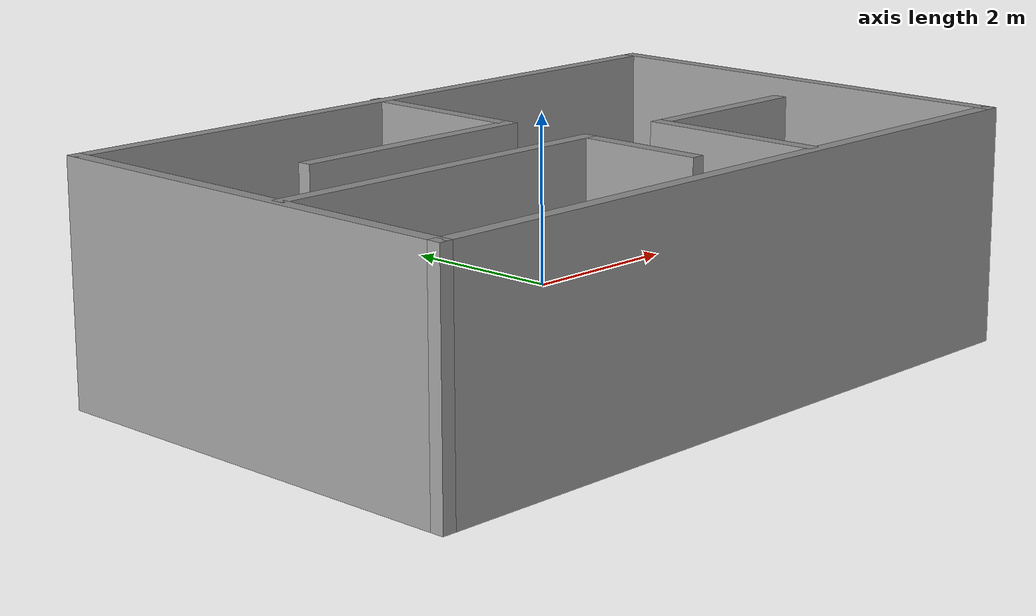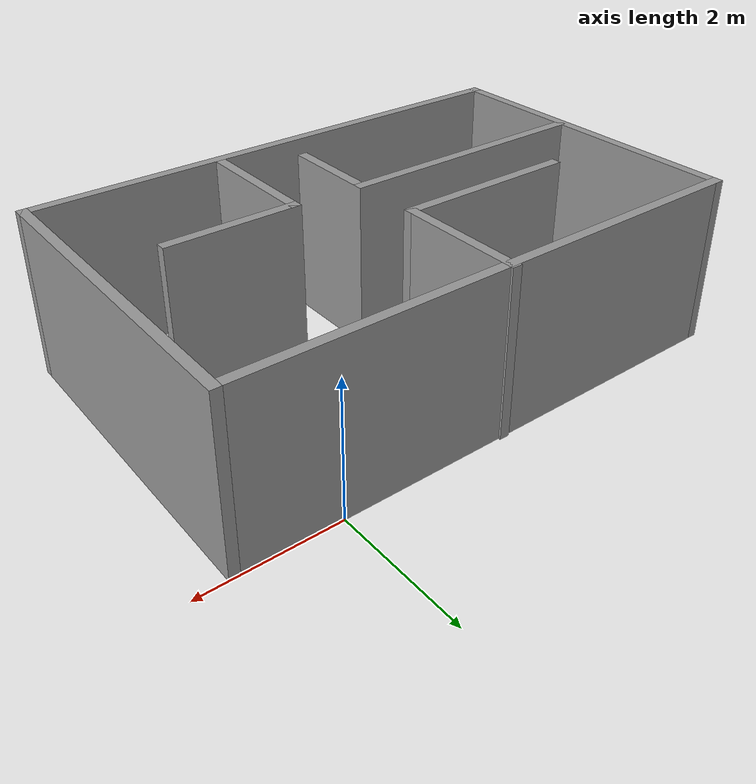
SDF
<?xml version='1.0'?>
<sdf version='1.7'>
  <model name='room'>
    <pose>-2.46067 -2.4824 0 0 -0 0</pose>
    <link name='Wall_11'>
      <collision name='Wall_11_Collision'>
        <geometry>
          <box>
            <size>4 0.15 2.5</size>
          </box>
        </geometry>
        <pose>0 0 1.25 0 -0 0</pose>
      </collision>
      <visual name='Wall_11_Visual'>
        <pose>0 0 1.25 0 -0 0</pose>
        <geometry>
          <box>
            <size>4 0.15 2.5</size>
          </box>
        </geometry>
        <material>
          <script>
            <uri>file://media/materials/scripts/gazebo.material</uri>
            <name>Gazebo/Grey</name>
          </script>
          <ambient>1 1 1 1</ambient>
        </material>
        <meta>
          <layer>0</layer>
        </meta>
      </visual>
      <pose>-1.92396 -0.434245 0 0 -0 0</pose>
    </link>
    <link name='Wall_12'>
      <collision name='Wall_12_Collision'>
        <geometry>
          <box>
            <size>1.5 0.15 2.5</size>
          </box>
        </geometry>
        <pose>0 0 1.25 0 -0 0</pose>
      </collision>
      <visual name='Wall_12_Visual'>
        <pose>0 0 1.25 0 -0 0</pose>
        <geometry>
          <box>
            <size>1.5 0.15 2.5</size>
          </box>
        </geometry>
        <material>
          <script>
            <uri>file://media/materials/scripts/gazebo.material</uri>
            <name>Gazebo/Grey</name>
          </script>
          <ambient>1 1 1 1</ambient>
        </material>
        <meta>
          <layer>0</layer>
        </meta>
      </visual>
      <pose>0.001044 -1.10925 0 0 -0 -1.5708</pose>
    </link>
    <link name='Wall_15'>
      <collision name='Wall_15_Collision'>
        <geometry>
          <box>
            <size>2 0.15 2.5</size>
          </box>
        </geometry>
        <pose>0 0 1.25 0 -0 0</pose>
      </collision>
      <visual name='Wall_15_Visual'>
        <pose>0 0 1.25 0 -0 0</pose>
        <geometry>
          <box>
            <size>2 0.15 2.5</size>
          </box>
        </geometry>
        <material>
          <script>
            <uri>file://media/materials/scripts/gazebo.material</uri>
            <name>Gazebo/Grey</name>
          </script>
          <ambient>1 1 1 1</ambient>
        </material>
        <meta>
          <layer>0</layer>
        </meta>
      </visual>
      <pose>1.06347 -1.41034 0 0 -0 1.5708</pose>
    </link>
    <link name='Wall_16'>
      <collision name='Wall_16_Collision'>
        <geometry>
          <box>
            <size>2 0.15 2.5</size>
          </box>
        </geometry>
        <pose>0 0 1.25 0 -0 0</pose>
      </collision>
      <visual name='Wall_16_Visual'>
        <pose>0 0 1.25 0 -0 0</pose>
        <geometry>
          <box>
            <size>2 0.15 2.5</size>
          </box>
        </geometry>
        <material>
          <script>
            <uri>file://media/materials/scripts/gazebo.material</uri>
            <name>Gazebo/Grey</name>
          </script>
          <ambient>1 1 1 1</ambient>
        </material>
        <meta>
          <layer>0</layer>
        </meta>
      </visual>
      <pose>1.98847 -0.485339 0 0 -0 0</pose>
    </link>
    <link name='Wall_3'>
      <collision name='Wall_3_Collision'>
        <geometry>
          <box>
            <size>8 0.15 2.5</size>
          </box>
        </geometry>
        <pose>0 0 1.25 0 -0 0</pose>
      </collision>
      <visual name='Wall_3_Visual'>
        <pose>0 0 1.25 0 -0 0</pose>
        <geometry>
          <box>
            <size>8 0.15 2.5</size>
          </box>
        </geometry>
        <material>
          <script>
            <uri>file://media/materials/scripts/gazebo.material</uri>
            <name>Gazebo/Grey</name>
          </script>
          <ambient>1 1 1 1</ambient>
        </material>
        <meta>
          <layer>0</layer>
        </meta>
      </visual>
      <pose>0 2.40979 0 0 -0 0</pose>
    </link>
    <link name='Wall_4'>
      <collision name='Wall_4_Collision'>
        <geometry>
          <box>
            <size>5 0.15 2.5</size>
          </box>
        </geometry>
        <pose>0 0 1.25 0 -0 0</pose>
      </collision>
      <visual name='Wall_4_Visual'>
        <pose>0 0 1.25 0 -0 0</pose>
        <geometry>
          <box>
            <size>5 0.15 2.5</size>
          </box>
        </geometry>
        <material>
          <script>
            <uri>file://media/materials/scripts/gazebo.material</uri>
            <name>Gazebo/Grey</name>
          </script>
          <ambient>1 1 1 1</ambient>
        </material>
        <meta>
          <layer>0</layer>
        </meta>
      </visual>
      <pose>3.925 -0.015209 0 0 -0 -1.5708</pose>
    </link>
    <link name='Wall_5'>
      <collision name='Wall_5_Collision'>
        <geometry>
          <box>
            <size>8 0.15 2.5</size>
          </box>
        </geometry>
        <pose>0 0 1.25 0 -0 0</pose>
      </collision>
      <visual name='Wall_5_Visual'>
        <pose>0 0 1.25 0 -0 0</pose>
        <geometry>
          <box>
            <size>8 0.15 2.5</size>
          </box>
        </geometry>
        <material>
          <script>
            <uri>file://media/materials/scripts/gazebo.material</uri>
            <name>Gazebo/Grey</name>
          </script>
          <ambient>1 1 1 1</ambient>
        </material>
        <meta>
          <layer>0</layer>
        </meta>
      </visual>
      <pose>0 -2.44021 0 0 -0 3.14159</pose>
    </link>
    <link name='Wall_6'>
      <collision name='Wall_6_Collision'>
        <geometry>
          <box>
            <size>5 0.15 2.5</size>
          </box>
        </geometry>
        <pose>0 0 1.25 0 -0 0</pose>
      </collision>
      <visual name='Wall_6_Visual'>
        <pose>0 0 1.25 0 -0 0</pose>
        <geometry>
          <box>
            <size>5 0.15 2.5</size>
          </box>
        </geometry>
        <material>
          <script>
            <uri>file://media/materials/scripts/gazebo.material</uri>
            <name>Gazebo/Grey</name>
          </script>
          <ambient>1 1 1 1</ambient>
        </material>
        <meta>
          <layer>0</layer>
        </meta>
      </visual>
      <pose>-3.925 -0.015209 0 0 -0 1.5708</pose>
    </link>
    <link name='Wall_8'>
      <collision name='Wall_8_Collision'>
        <geometry>
          <box>
            <size>2 0.15 2.5</size>
          </box>
        </geometry>
        <pose>0 0 1.25 0 -0 0</pose>
      </collision>
      <visual name='Wall_8_Visual'>
        <pose>0 0 1.25 0 -0 0</pose>
        <geometry>
          <box>
            <size>2 0.15 2.5</size>
          </box>
        </geometry>
        <material>
          <script>
            <uri>file://media/materials/scripts/gazebo.material</uri>
            <name>Gazebo/Grey</name>
          </script>
          <ambient>1 1 1 1</ambient>
        </material>
        <meta>
          <layer>0</layer>
        </meta>
      </visual>
      <pose>-0.046769 1.51521 0 0 -0 -1.5708</pose>
    </link>
    <link name='Wall_9'>
      <collision name='Wall_9_Collision'>
        <geometry>
          <box>
            <size>2.75 0.15 2.5</size>
          </box>
        </geometry>
        <pose>0 0 1.25 0 -0 0</pose>
      </collision>
      <visual name='Wall_9_Visual'>
        <pose>0 0 1.25 0 -0 0</pose>
        <geometry>
          <box>
            <size>2.75 0.15 2.5</size>
          </box>
        </geometry>
        <material>
          <script>
            <uri>file://media/materials/scripts/gazebo.material</uri>
            <name>Gazebo/Grey</name>
          </script>
          <ambient>1 1 1 1</ambient>
        </material>
        <meta>
          <layer>0</layer>
        </meta>
      </visual>
      <pose>-1.34677 0.590209 0 0 -0 3.14159</pose>
    </link>
    <static>1</static>
  </model>
</sdf>
